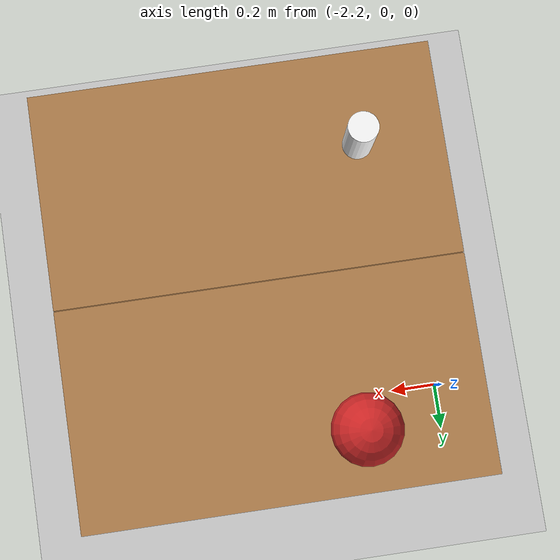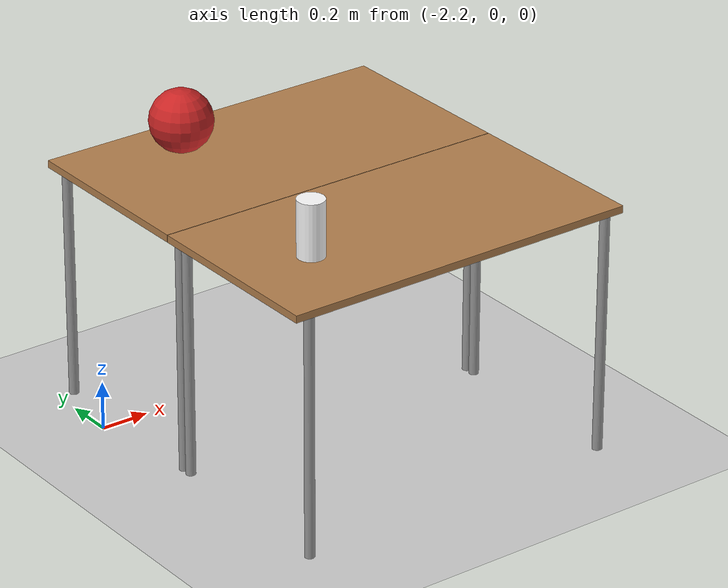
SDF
<sdf version="1.10">
 <world name="empty">
  <physics name="1ms" type="ignored">
   <max_step_size>0.001</max_step_size>
   <real_time_factor>1</real_time_factor>
   <real_time_update_rate>1000</real_time_update_rate>
  </physics>
  <plugin name="gz::sim::systems::Physics" filename="gz-sim-physics-system"/>
  <plugin name="gz::sim::systems::UserCommands" filename="gz-sim-user-commands-system"/>
  <plugin name="gz::sim::systems::SceneBroadcaster" filename="gz-sim-scene-broadcaster-system"/>
  <plugin name="gz::sim::systems::Contact" filename="gz-sim-contact-system"/>
  <gravity>0 0 -9.8000000000000007</gravity>
  <magnetic_field>5.5644999999999998e-06 2.2875799999999999e-05 -4.2388400000000002e-05</magnetic_field>
  <atmosphere type="adiabatic"/>
  <scene>
   <ambient>0.400000006 0.400000006 0.400000006 1</ambient>
   <background>0.699999988 0.699999988 0.699999988 1</background>
   <shadows>true</shadows>
  </scene>
  <model name="ground_plane">
   <static>true</static>
   <link name="link">
    <collision name="collision">
     <geometry><plane><normal>0 0 1</normal><size>100 100</size></plane></geometry>
    </collision>
    <visual name="visual">
     <geometry><plane><normal>0 0 1</normal><size>100 100</size></plane></geometry>
     <material>
      <ambient>0.800000012 0.800000012 0.800000012 1</ambient>
      <diffuse>0.800000012 0.800000012 0.800000012 1</diffuse>
      <specular>0.800000012 0.800000012 0.800000012 1</specular>
     </material>
    </visual>
    <inertial>
     <mass>1</mass>
     <inertia><ixx>1</ixx><ixy>0</ixy><ixz>0</ixz><iyy>1</iyy><iyz>0</iyz><izz>1</izz></inertia>
    </inertial>
   </link>
  </model>
  <model name="Table">
   <static>true</static>
   <link name="link">
    <collision name="surface">
     <pose>0 0 1 0 0 0</pose>
     <geometry><box><size>1.5 0.80000000000000004 0.029999999999999999</size></box></geometry>
     <surface><friction><ode><mu>0.59999999999999998</mu><mu2>0.59999999999999998</mu2></ode></friction></surface>
    </collision>
    <visual name="visual1">
     <pose>0 0 1 0 0 0</pose>
     <geometry><box><size>1.5 0.80000000000000004 0.029999999999999999</size></box></geometry>
     <material>
      <diffuse>1 1 1 1</diffuse>
      <script><uri>file://media/materials/scripts/gazebo.material</uri><name>Gazebo/Wood</name></script>
      <pbr><metal><albedo_map>model://Table/Table_Diffuse.jpg</albedo_map></metal></pbr>
     </material>
    </visual>
    <collision name="front_left_leg">
     <pose>0.68000000000000005 0.38 0.5 0 0 0</pose>
     <geometry><cylinder><radius>0.02</radius><length>1</length></cylinder></geometry>
    </collision>
    <visual name="front_left_leg">
     <pose>0.68000000000000005 0.38 0.5 0 0 0</pose>
     <geometry><cylinder><radius>0.02</radius><length>1</length></cylinder></geometry>
     <material>
      <diffuse>0.5 0.5 0.5 1</diffuse>
      <script><uri>file://media/materials/scripts/gazebo.material</uri><name>Gazebo/Grey</name></script>
     </material>
    </visual>
    <collision name="front_right_leg">
     <pose>0.68000000000000005 -0.38 0.5 0 0 0</pose>
     <geometry><cylinder><radius>0.02</radius><length>1</length></cylinder></geometry>
    </collision>
    <visual name="front_right_leg">
     <pose>0.68000000000000005 -0.38 0.5 0 0 0</pose>
     <geometry><cylinder><radius>0.02</radius><length>1</length></cylinder></geometry>
     <material>
      <diffuse>0.5 0.5 0.5 1</diffuse>
      <script><uri>file://media/materials/scripts/gazebo.material</uri><name>Gazebo/Grey</name></script>
     </material>
    </visual>
    <collision name="back_right_leg">
     <pose>-0.68000000000000005 -0.38 0.5 0 0 0</pose>
     <geometry><cylinder><radius>0.02</radius><length>1</length></cylinder></geometry>
    </collision>
    <visual name="back_right_leg">
     <pose>-0.68000000000000005 -0.38 0.5 0 0 0</pose>
     <geometry><cylinder><radius>0.02</radius><length>1</length></cylinder></geometry>
     <material>
      <diffuse>0.5 0.5 0.5 1</diffuse>
      <script><uri>file://media/materials/scripts/gazebo.material</uri><name>Gazebo/Grey</name></script>
     </material>
    </visual>
    <collision name="back_left_leg">
     <pose>-0.68000000000000005 0.38 0.5 0 0 0</pose>
     <geometry><cylinder><radius>0.02</radius><length>1</length></cylinder></geometry>
    </collision>
    <visual name="back_left_leg">
     <pose>-0.68000000000000005 0.38 0.5 0 0 0</pose>
     <geometry><cylinder><radius>0.02</radius><length>1</length></cylinder></geometry>
     <material>
      <diffuse>0.5 0.5 0.5 1</diffuse>
      <script><uri>file://media/materials/scripts/gazebo.material</uri><name>Gazebo/Grey</name></script>
     </material>
    </visual>
    <inertial>
     <mass>1</mass>
     <inertia><ixx>1</ixx><ixy>0</ixy><ixz>0</ixz><iyy>1</iyy><iyz>0</iyz><izz>1</izz></inertia>
    </inertial>
   </link>
   <pose>-1.4512 -0.068002300000000002 0 0 0 0</pose>
  </model>
  <model name="Table_0">
   <static>true</static>
   <link name="link">
    <collision name="surface">
     <pose>0 0 1 0 0 0</pose>
     <geometry><box><size>1.5 0.80000000000000004 0.029999999999999999</size></box></geometry>
     <surface><friction><ode><mu>0.59999999999999998</mu><mu2>0.59999999999999998</mu2></ode></friction></surface>
    </collision>
    <visual name="visual1">
     <pose>0 0 1 0 0 0</pose>
     <geometry><box><size>1.5 0.80000000000000004 0.029999999999999999</size></box></geometry>
     <material>
      <diffuse>1 1 1 1</diffuse>
      <script><uri>file://media/materials/scripts/gazebo.material</uri><name>Gazebo/Wood</name></script>
      <pbr><metal><albedo_map>model://Table/Table_Diffuse.jpg</albedo_map></metal></pbr>
     </material>
    </visual>
    <collision name="front_left_leg">
     <pose>0.68000000000000005 0.38 0.5 0 0 0</pose>
     <geometry><cylinder><radius>0.02</radius><length>1</length></cylinder></geometry>
    </collision>
    <visual name="front_left_leg">
     <pose>0.68000000000000005 0.38 0.5 0 0 0</pose>
     <geometry><cylinder><radius>0.02</radius><length>1</length></cylinder></geometry>
     <material>
      <diffuse>0.5 0.5 0.5 1</diffuse>
      <script><uri>file://media/materials/scripts/gazebo.material</uri><name>Gazebo/Grey</name></script>
     </material>
    </visual>
    <collision name="front_right_leg">
     <pose>0.68000000000000005 -0.38 0.5 0 0 0</pose>
     <geometry><cylinder><radius>0.02</radius><length>1</length></cylinder></geometry>
    </collision>
    <visual name="front_right_leg">
     <pose>0.68000000000000005 -0.38 0.5 0 0 0</pose>
     <geometry><cylinder><radius>0.02</radius><length>1</length></cylinder></geometry>
     <material>
      <diffuse>0.5 0.5 0.5 1</diffuse>
      <script><uri>file://media/materials/scripts/gazebo.material</uri><name>Gazebo/Grey</name></script>
     </material>
    </visual>
    <collision name="back_right_leg">
     <pose>-0.68000000000000005 -0.38 0.5 0 0 0</pose>
     <geometry><cylinder><radius>0.02</radius><length>1</length></cylinder></geometry>
    </collision>
    <visual name="back_right_leg">
     <pose>-0.68000000000000005 -0.38 0.5 0 0 0</pose>
     <geometry><cylinder><radius>0.02</radius><length>1</length></cylinder></geometry>
     <material>
      <diffuse>0.5 0.5 0.5 1</diffuse>
      <script><uri>file://media/materials/scripts/gazebo.material</uri><name>Gazebo/Grey</name></script>
     </material>
    </visual>
    <collision name="back_left_leg">
     <pose>-0.68000000000000005 0.38 0.5 0 0 0</pose>
     <geometry><cylinder><radius>0.02</radius><length>1</length></cylinder></geometry>
    </collision>
    <visual name="back_left_leg">
     <pose>-0.68000000000000005 0.38 0.5 0 0 0</pose>
     <geometry><cylinder><radius>0.02</radius><length>1</length></cylinder></geometry>
     <material>
      <diffuse>0.5 0.5 0.5 1</diffuse>
      <script><uri>file://media/materials/scripts/gazebo.material</uri><name>Gazebo/Grey</name></script>
     </material>
    </visual>
    <inertial>
     <mass>1</mass>
     <inertia><ixx>1</ixx><ixy>0</ixy><ixz>0</ixz><iyy>1</iyy><iyz>0</iyz><izz>1</izz></inertia>
    </inertial>
   </link>
   <pose>-1.4512 -0.87166900000000003 0 0 0 0</pose>
  </model>
  <model name="red_ball_10in">
   <pose>-1.7417652606964111 0.10298699885606766 1.141999602499804 0 0 0</pose>
   <link name="link">
    <inertial>
     <mass>0.21299999999999999</mass>
     <inertia>
      <ixx>0.0032266669999999999</ixx>
      <ixy>0</ixy>
      <ixz>0</ixz>
      <iyy>0.0032266669999999999</iyy>
      <iyz>0</iyz>
      <izz>0.0032266669999999999</izz>
     </inertia>
    </inertial>
    <visual name="visual">
     <geometry><sphere><radius>0.127</radius></sphere></geometry>
     <material>
      <script><uri>file://media/materials/scripts/gazebo.material</uri><name>Gazebo/Red</name></script>
      <emissive>1 0 0 1</emissive>
     </material>
    </visual>
    <collision name="collision">
     <geometry><sphere><radius>0.127</radius></sphere></geometry>
     <surface>
      <bounce>
       <restitution_coefficient>0.15937000000000001</restitution_coefficient>
       <threshold>0</threshold>
      </bounce>
      <contact><ode><max_vel>100</max_vel><min_depth>0.001</min_depth></ode></contact>
     </surface>
    </collision>
   </link>
   <static>false</static>
  </model>
  <model name="beer">
   <link name="link">
    <pose>0 0 0.115 0 0 0</pose>
    <inertial>
     <mass>0.39000000000000001</mass>
     <inertia>
      <ixx>0.00058</ixx>
      <ixy>0</ixy>
      <ixz>0</ixz>
      <iyy>0.00058</iyy>
      <iyz>0</iyz>
      <izz>0.00019000000000000001</izz>
     </inertia>
    </inertial>
    <collision name="collision">
     <geometry><cylinder><radius>0.055</radius><length>0.23000000000000001</length></cylinder></geometry>
    </collision>
    <visual name="visual">
     <geometry><cylinder><radius>0.055</radius><length>0.23000000000000001</length></cylinder></geometry>
     <material>
      <diffuse>1 1 1 1</diffuse>
      <script>
       <uri>file:///home/nimrod/gazebo_models/beer/model://beer/materials/scripts</uri>
       <uri>model://beer/materials/textures</uri>
       <name>Beer/Diffuse</name>
      </script>
      <pbr><metal><albedo_map>model://beer/materials/textures/beer.png</albedo_map></metal></pbr>
     </material>
    </visual>
   </link>
   <pose>-1.8789499998092651 -0.91998898983001709 1.0149991383985311 3.1773891530899924e-18 8.9187996595466205e-18 -5.1628062490866397e-18</pose>
   <static>false</static>
  </model>
  <light name="sun" type="directional">
   <pose>0 0 10 0 0 0</pose>
   <intensity>1</intensity>
   <direction>-0.5 0.10000000000000001 -0.90000000000000002</direction>
   <diffuse>0.800000012 0.800000012 0.800000012 1</diffuse>
   <specular>0.200000003 0.200000003 0.200000003 1</specular>
   <attenuation>
    <range>1000</range>
    <linear>0.0099999997764825821</linear>
    <constant>0.89999997615814209</constant>
    <quadratic>0.0010000000474974513</quadratic>
   </attenuation>
   <spot><inner_angle>0</inner_angle><outer_angle>0</outer_angle><falloff>0</falloff></spot>
  </light>
 </world>
</sdf>
